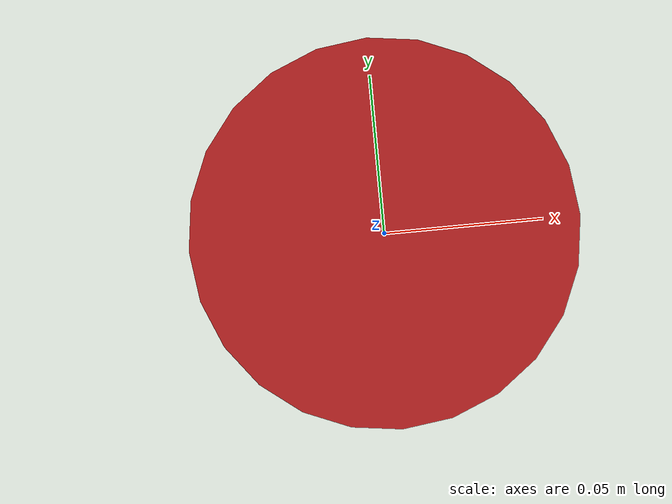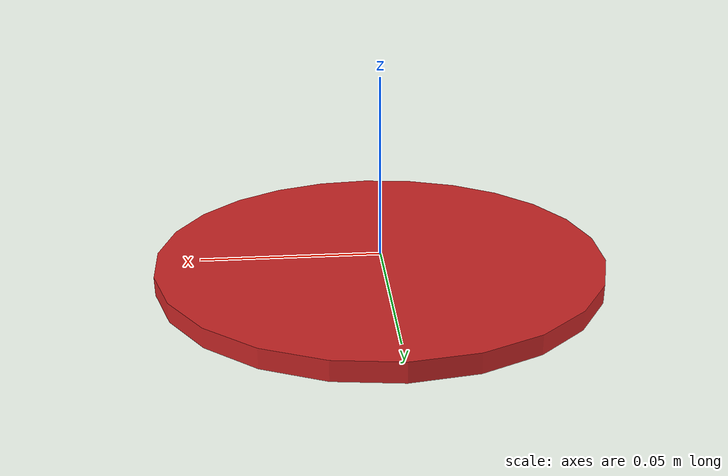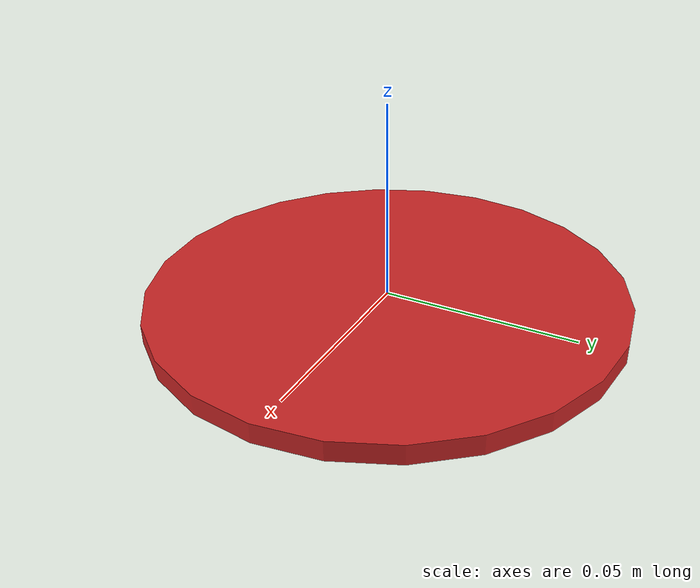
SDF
<?xml version='1.0'?>
<sdf version='1.6'>
  <model name='puck'>
  <pose>0.0 0 0.0 0 0 0</pose>
    <link name='link_0'>
      <inertial>
        <mass>0.01</mass>
        <inertia>
          <ixx>0.0038</ixx>
          <ixy>0</ixy>
          <ixz>0</ixz>
          <iyy>0.0038</iyy>
          <iyz>0</iyz>
          <izz>0.05</izz>
        </inertia>
        <pose frame=''>0 0 0 0 0 0</pose>
      </inertial>
      <pose frame=''>0 0 0 0 -0 0</pose>
      <gravity>1</gravity>
      <self_collide>0</self_collide>
      <kinematic>0</kinematic>
      <enable_wind>0</enable_wind>
      <visual name='visual'>
        <pose frame=''>0 0 0 0 0 0</pose>
        <geometry>
          <cylinder>
            <radius>0.0615</radius>
            <length>0.005</length>
          </cylinder>
        </geometry>
        <material>
          <lighting>1</lighting>
          <script>
            <name>Gazebo/Red</name>
          </script>
        </material>
      </visual>
      <collision name='collision'>
        <pose frame=''>0 0 0 0 -0 0</pose>
        <geometry>
          <cylinder>
            <radius>0.0615</radius>
            <length>0.005</length>
          </cylinder>
        </geometry>
        <surface>
          <bounce>
            <restitution_coefficient>0.8</restitution_coefficient>
            <threshold>0</threshold>
          </bounce>
          <friction>
            <ode>
              <mu>0</mu>
              <mu2>0</mu2>
            </ode>
          </friction>
          <contact>
            <ode>
              <soft_cfm>0.1</soft_cfm>
              <soft_erp>0.1</soft_erp>
              <max_vel>1</max_vel>
            </ode>
          </contact>
        </surface>
      </collision>
      <velocity_decay>
        <linear>0.004</linear>
      </velocity_decay>
    </link>
    <static>0</static>
    <allow_auto_disable>1</allow_auto_disable>
  </model>
</sdf>
